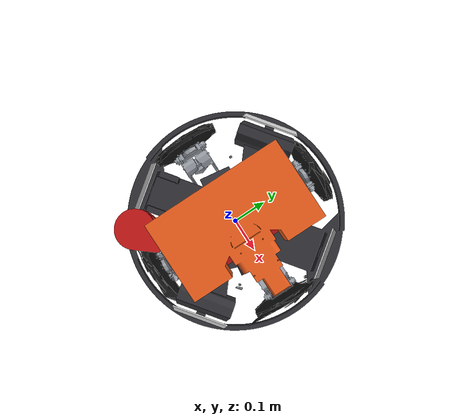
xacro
<?xml version="1.0"?>
<robot name="sentry" xmlns:xacro="http://www.ros.org/wiki/xacro">
  <xacro:arg name="lidar_x" default="-0.105"/>
  <xacro:arg name="lidar_y" default="-0.193326"/>
  <xacro:arg name="lidar_z" default="0.101293"/>
  <xacro:arg name="lidar_yaw" default="0.5907"/>
  <link name="root">
    <visual>
      <geometry>
        <mesh filename="package://thornbots_pkg/meshes/sentry_v2/root.stl"/>
      </geometry>
      <material name="root"><color rgba="0.18 0.18 0.2 1"/></material>
    </visual>
  </link>
  <link name="body"/>
  <joint name="chassis_yaw" type="continuous">
    <parent link="root"/>
    <child link="body"/>
    <origin xyz="0 0 0" rpy="0 0 0"/>
    <axis xyz="0 0 1"/>
  </joint>
  <link name="head">
    <visual>
      <geometry>
        <mesh filename="package://thornbots_pkg/meshes/sentry_v2/head.stl"/>
      </geometry>
      <material name="head"><color rgba="0.75 0.08 0.08 1"/></material>
    </visual>
  </link>
  <joint name="headlink" type="continuous">
    <parent link="root"/>
    <child link="head"/>
    <origin xyz="0 0 0.267503694" rpy="0 0 0"/>
    <axis xyz="0 0 1"/>
  </joint>
  <link name="head_pitch">
    <visual>
      <geometry>
        <mesh filename="package://thornbots_pkg/meshes/sentry_v2/head_pitch.stl"/>
      </geometry>
      <material name="head_pitch"><color rgba="0.9 0.35 0.1 1"/></material>
    </visual>
  </link>
  <joint name="headpitch" type="revolute">
    <parent link="head"/>
    <child link="head_pitch"/>
    <origin xyz="0 0 0.136" rpy="0 0 0"/>
    <axis xyz="0 1 0"/>
    <limit lower="-0.6" upper="0.6" effort="200" velocity="10"/>
  </joint>
  <link name="carrier_0">
    <visual>
      <geometry>
        <mesh filename="package://thornbots_pkg/meshes/sentry_v2/carrier_0.stl"/>
      </geometry>
      <material name="carrier_0"><color rgba="0.6 0.62 0.65 1"/></material>
    </visual>
  </link>
  <joint name="suspension_0" type="fixed">
    <parent link="body"/>
    <child link="carrier_0"/>
    <origin xyz="6.61834e-09 -0.247 0.0954" rpy="0 0 0"/>
  </joint>
  <link name="wheel_0">
    <visual>
      <geometry>
        <mesh filename="package://thornbots_pkg/meshes/sentry_v2/wheel_0.stl"/>
      </geometry>
      <material name="wheel_0"><color rgba="0.08 0.08 0.08 1"/></material>
    </visual>
  </link>
  <joint name="wheel_0_spin" type="fixed">
    <parent link="carrier_0"/>
    <child link="wheel_0"/>
    <origin xyz="0 0 0" rpy="0 0 0"/>
  </joint>
  <link name="carrier_1">
    <visual>
      <geometry>
        <mesh filename="package://thornbots_pkg/meshes/sentry_v2/carrier_1.stl"/>
      </geometry>
      <material name="carrier_1"><color rgba="0.6 0.62 0.65 1"/></material>
    </visual>
  </link>
  <joint name="suspension_1" type="fixed">
    <parent link="body"/>
    <child link="carrier_1"/>
    <origin xyz="0.247 6.61834e-09 0.0954" rpy="0 0 0"/>
  </joint>
  <link name="wheel_1">
    <visual>
      <geometry>
        <mesh filename="package://thornbots_pkg/meshes/sentry_v2/wheel_1.stl"/>
      </geometry>
      <material name="wheel_1"><color rgba="0.08 0.08 0.08 1"/></material>
    </visual>
  </link>
  <joint name="wheel_1_spin" type="fixed">
    <parent link="carrier_1"/>
    <child link="wheel_1"/>
    <origin xyz="0 0 0" rpy="0 0 0"/>
  </joint>
  <link name="carrier_2">
    <visual>
      <geometry>
        <mesh filename="package://thornbots_pkg/meshes/sentry_v2/carrier_2.stl"/>
      </geometry>
      <material name="carrier_2"><color rgba="0.6 0.62 0.65 1"/></material>
    </visual>
  </link>
  <joint name="suspension_2" type="fixed">
    <parent link="body"/>
    <child link="carrier_2"/>
    <origin xyz="-6.61834e-09 0.247 0.0954" rpy="0 0 0"/>
  </joint>
  <link name="wheel_2">
    <visual>
      <geometry>
        <mesh filename="package://thornbots_pkg/meshes/sentry_v2/wheel_2.stl"/>
      </geometry>
      <material name="wheel_2"><color rgba="0.08 0.08 0.08 1"/></material>
    </visual>
  </link>
  <joint name="wheel_2_spin" type="fixed">
    <parent link="carrier_2"/>
    <child link="wheel_2"/>
    <origin xyz="0 0 0" rpy="0 0 0"/>
  </joint>
  <link name="carrier_3">
    <visual>
      <geometry>
        <mesh filename="package://thornbots_pkg/meshes/sentry_v2/carrier_3.stl"/>
      </geometry>
      <material name="carrier_3"><color rgba="0.6 0.62 0.65 1"/></material>
    </visual>
  </link>
  <joint name="suspension_3" type="fixed">
    <parent link="body"/>
    <child link="carrier_3"/>
    <origin xyz="-0.247 -6.61834e-09 0.0954" rpy="0 0 0"/>
  </joint>
  <link name="wheel_3">
    <visual>
      <geometry>
        <mesh filename="package://thornbots_pkg/meshes/sentry_v2/wheel_3.stl"/>
      </geometry>
      <material name="wheel_3"><color rgba="0.08 0.08 0.08 1"/></material>
    </visual>
  </link>
  <joint name="wheel_3_spin" type="fixed">
    <parent link="carrier_3"/>
    <child link="wheel_3"/>
    <origin xyz="0 0 0" rpy="0 0 0"/>
  </joint>
  <link name="armor_0">
    <visual>
      <geometry><box size="0.003 0.135 0.125"/></geometry>
      <material name="armor"><color rgba="0.85 0.85 0.85 1"/></material>
    </visual>
  </link>
  <joint name="armor_0link" type="fixed">
    <parent link="body"/>
    <child link="armor_0"/>
    <origin xyz="0.204139959 0.150682952 0.148603392" rpy="0 -0.261799339 0.635864487"/>
  </joint>
  <link name="armor_1">
    <visual>
      <geometry><box size="0.003 0.135 0.125"/></geometry>
      <material name="armor"><color rgba="0.85 0.85 0.85 1"/></material>
    </visual>
  </link>
  <joint name="armor_1link" type="fixed">
    <parent link="body"/>
    <child link="armor_1"/>
    <origin xyz="-0.148299431 0.200910863 0.25248797" rpy="0 -0.261797504 2.206660314"/>
  </joint>
  <link name="armor_2">
    <visual>
      <geometry><box size="0.003 0.135 0.125"/></geometry>
      <material name="armor"><color rgba="0.85 0.85 0.85 1"/></material>
    </visual>
  </link>
  <joint name="armor_2link" type="fixed">
    <parent link="body"/>
    <child link="armor_2"/>
    <origin xyz="-0.204139942 -0.150683009 0.148603318" rpy="0 -0.261796504 -2.505724829"/>
  </joint>
  <link name="armor_3">
    <visual>
      <geometry><box size="0.003 0.135 0.125"/></geometry>
      <material name="armor"><color rgba="0.85 0.85 0.85 1"/></material>
    </visual>
  </link>
  <joint name="armor_3link" type="fixed">
    <parent link="body"/>
    <child link="armor_3"/>
    <origin xyz="0.148299403 -0.200910883 0.252487973" rpy="0 -0.261799535 -0.934934345"/>
  </joint>
  <link name="lidar"/>
  <joint name="lidarlink" type="fixed">
    <parent link="head"/>
    <child link="lidar"/>
    <origin xyz="$(arg lidar_x) $(arg lidar_y) $(arg lidar_z)" rpy="0 0 $(arg lidar_yaw)"/>
  </joint>
  <!-- The D435's RGB lens (the CAD's RGB FOV apex, 44 mm left of the IR
       apex), which /cv/panel_detections are deprojected from. -->
  <link name="camera"/>
  <joint name="cameralink" type="fixed">
    <parent link="head_pitch"/>
    <child link="camera"/>
    <origin xyz="0.095699877 0.0325 0.055000043" rpy="0 0 0"/>
  </joint>
  <!-- Aiming origin on the pitch axis, between the flywheels, pointing
       along head_pitch +x. Only the lateral offset comes from the CAD;
       sim/urdf/sentry_v2.urdf.xacro adds the same frame. -->
  <link name="muzzle"/>
  <joint name="muzzlelink" type="fixed">
    <parent link="head_pitch"/>
    <child link="muzzle"/>
    <origin xyz="0 0.00190269 0" rpy="0 0 0"/>
  </joint>
</robot>
